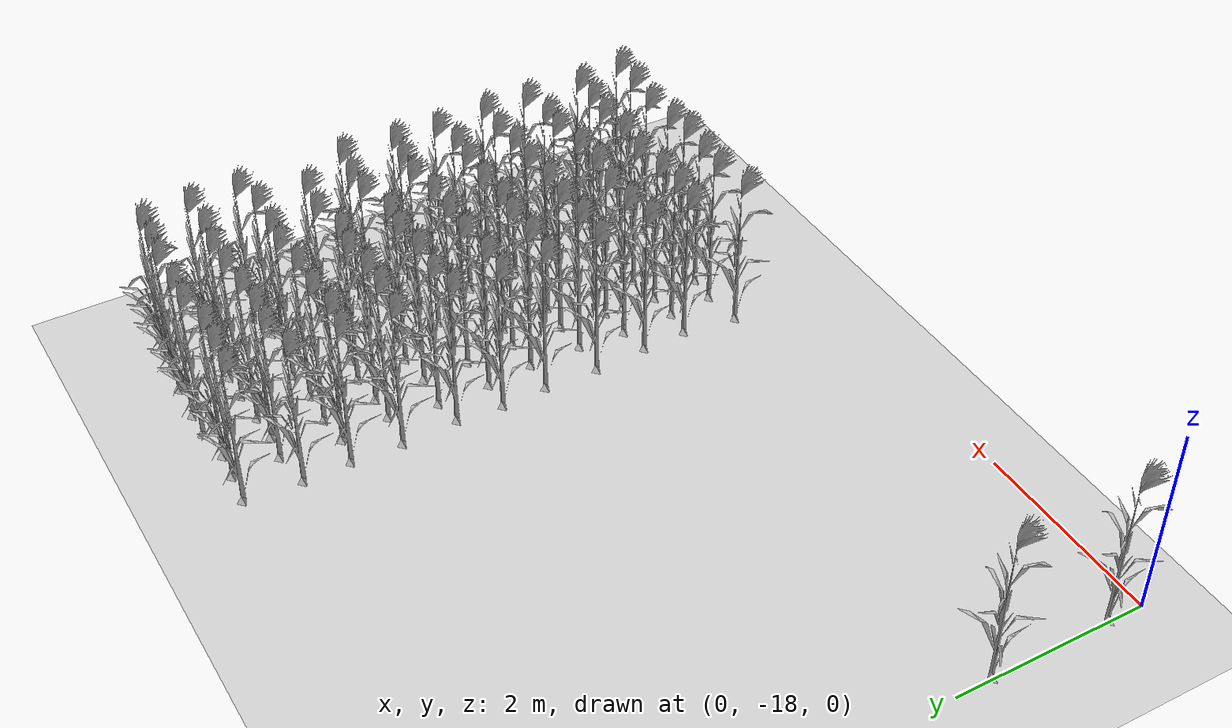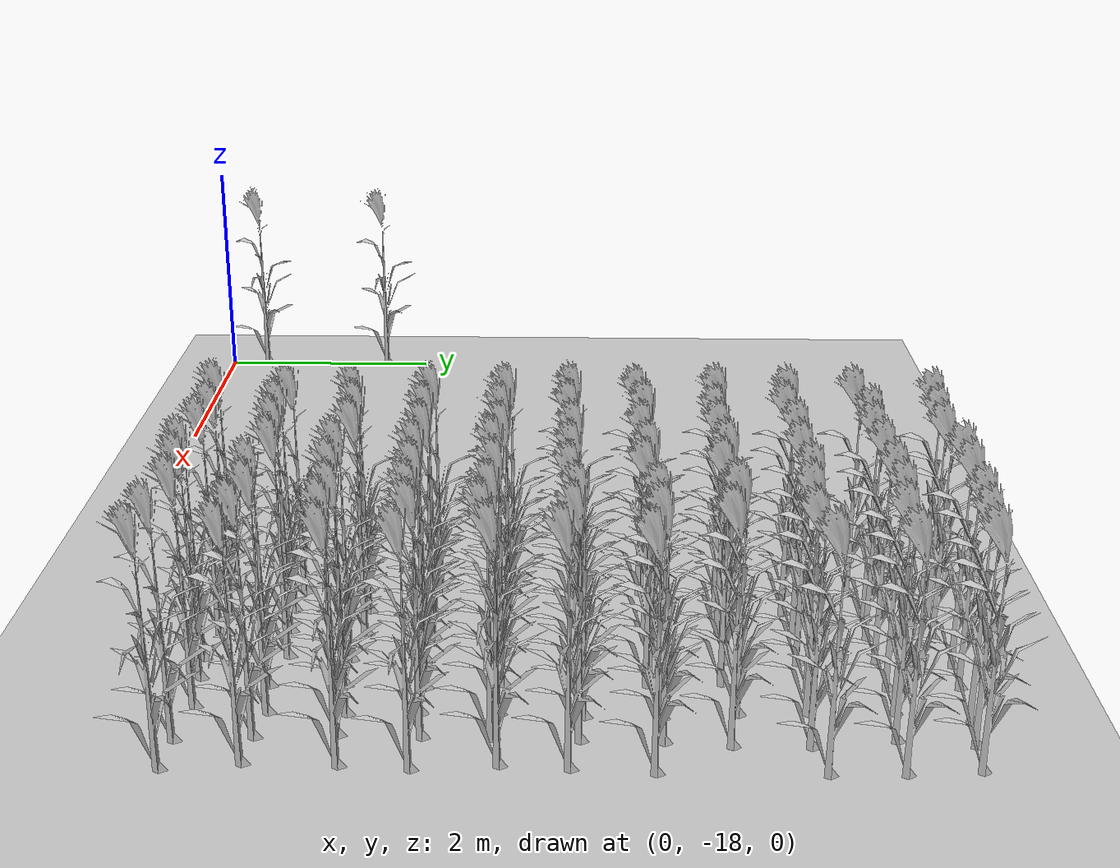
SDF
<sdf version="1.7">
 <world name="farmland_world">
  <model name="ground_plane">
   <static>1</static>
   <link name="link">
    <collision name="collision">
     <geometry><plane><normal>0 0 1</normal><size>40.0 40.0</size></plane></geometry>
     <surface><friction><ode><mu>100</mu><mu2>50</mu2></ode></friction></surface>
    </collision>
    <visual name="visual">
     <cast_shadows>0</cast_shadows>
     <geometry><plane><normal>0 0 1</normal><size>40.0 40.0</size></plane></geometry>
     <material>
      <script><uri>file://media/materials/scripts/gazebo.material</uri><name>Gazebo/Grey</name></script>
     </material>
    </visual>
   </link>
  </model>
  <model name="tree_3_918">
   <static>1</static>
   <link name="link">
    <collision name="collision">
     <geometry><mesh><uri>model://Corn_low_poly/corn.obj</uri><scale>1 1 1</scale></mesh></geometry>
     <surface><friction><ode><mu>100</mu><mu2>50</mu2></ode></friction></surface>
    </collision>
    <visual name="visual">
     <geometry><mesh><uri>model://Corn_low_poly/corn.obj</uri><scale>1 1 1</scale></mesh></geometry>
    </visual>
   </link>
   <pose>5.009285460931384 -11.77307057112158 0 0 0 0</pose>
  </model>
  <model name="tree_3_919">
   <static>1</static>
   <link name="link">
    <collision name="collision">
     <geometry><mesh><uri>model://Corn_low_poly/corn.obj</uri><scale>1 1 1</scale></mesh></geometry>
     <surface><friction><ode><mu>100</mu><mu2>50</mu2></ode></friction></surface>
    </collision>
    <visual name="visual">
     <geometry><mesh><uri>model://Corn_low_poly/corn.obj</uri><scale>1 1 1</scale></mesh></geometry>
    </visual>
   </link>
   <pose>4.968579983121239 -12.343862005149255 0 0 0 0</pose>
  </model>
  <model name="tree_3_920">
   <static>1</static>
   <link name="link">
    <collision name="collision">
     <geometry><mesh><uri>model://Corn_low_poly/corn.obj</uri><scale>1 1 1</scale></mesh></geometry>
     <surface><friction><ode><mu>100</mu><mu2>50</mu2></ode></friction></surface>
    </collision>
    <visual name="visual">
     <geometry><mesh><uri>model://Corn_low_poly/corn.obj</uri><scale>1 1 1</scale></mesh></geometry>
    </visual>
   </link>
   <pose>4.980646904777606 -12.823655536347433 0 0 0 0</pose>
  </model>
  <model name="tree_3_921">
   <static>1</static>
   <link name="link">
    <collision name="collision">
     <geometry><mesh><uri>model://Corn_low_poly/corn.obj</uri><scale>1 1 1</scale></mesh></geometry>
     <surface><friction><ode><mu>100</mu><mu2>50</mu2></ode></friction></surface>
    </collision>
    <visual name="visual">
     <geometry><mesh><uri>model://Corn_low_poly/corn.obj</uri><scale>1 1 1</scale></mesh></geometry>
    </visual>
   </link>
   <pose>4.964461151372059 -13.342723838890858 0 0 0 0</pose>
  </model>
  <model name="tree_3_922">
   <static>1</static>
   <link name="link">
    <collision name="collision">
     <geometry><mesh><uri>model://Corn_low_poly/corn.obj</uri><scale>1 1 1</scale></mesh></geometry>
     <surface><friction><ode><mu>100</mu><mu2>50</mu2></ode></friction></surface>
    </collision>
    <visual name="visual">
     <geometry><mesh><uri>model://Corn_low_poly/corn.obj</uri><scale>1 1 1</scale></mesh></geometry>
    </visual>
   </link>
   <pose>4.999490262744133 -13.92394477992745 0 0 0 0</pose>
  </model>
  <model name="tree_3_923">
   <static>1</static>
   <link name="link">
    <collision name="collision">
     <geometry><mesh><uri>model://Corn_low_poly/corn.obj</uri><scale>1 1 1</scale></mesh></geometry>
     <surface><friction><ode><mu>100</mu><mu2>50</mu2></ode></friction></surface>
    </collision>
    <visual name="visual">
     <geometry><mesh><uri>model://Corn_low_poly/corn.obj</uri><scale>1 1 1</scale></mesh></geometry>
    </visual>
   </link>
   <pose>4.964750974360877 -14.39624685223046 0 0 0 0</pose>
  </model>
  <model name="tree_3_924">
   <static>1</static>
   <link name="link">
    <collision name="collision">
     <geometry><mesh><uri>model://Corn_low_poly/corn.obj</uri><scale>1 1 1</scale></mesh></geometry>
     <surface><friction><ode><mu>100</mu><mu2>50</mu2></ode></friction></surface>
    </collision>
    <visual name="visual">
     <geometry><mesh><uri>model://Corn_low_poly/corn.obj</uri><scale>1 1 1</scale></mesh></geometry>
    </visual>
   </link>
   <pose>4.987510863996455 -14.872094303444827 0 0 0 0</pose>
  </model>
  <model name="tree_3_925">
   <static>1</static>
   <link name="link">
    <collision name="collision">
     <geometry><mesh><uri>model://Corn_low_poly/corn.obj</uri><scale>1 1 1</scale></mesh></geometry>
     <surface><friction><ode><mu>100</mu><mu2>50</mu2></ode></friction></surface>
    </collision>
    <visual name="visual">
     <geometry><mesh><uri>model://Corn_low_poly/corn.obj</uri><scale>1 1 1</scale></mesh></geometry>
    </visual>
   </link>
   <pose>4.972067744864469 -15.428914594177376 0 0 0 0</pose>
  </model>
  <model name="tree_3_926">
   <static>1</static>
   <link name="link">
    <collision name="collision">
     <geometry><mesh><uri>model://Corn_low_poly/corn.obj</uri><scale>1 1 1</scale></mesh></geometry>
     <surface><friction><ode><mu>100</mu><mu2>50</mu2></ode></friction></surface>
    </collision>
    <visual name="visual">
     <geometry><mesh><uri>model://Corn_low_poly/corn.obj</uri><scale>1 1 1</scale></mesh></geometry>
    </visual>
   </link>
   <pose>5.009407192136807 -15.99072091231927 0 0 0 0</pose>
  </model>
  <model name="tree_3_927">
   <static>1</static>
   <link name="link">
    <collision name="collision">
     <geometry><mesh><uri>model://Corn_low_poly/corn.obj</uri><scale>1 1 1</scale></mesh></geometry>
     <surface><friction><ode><mu>100</mu><mu2>50</mu2></ode></friction></surface>
    </collision>
    <visual name="visual">
     <geometry><mesh><uri>model://Corn_low_poly/corn.obj</uri><scale>1 1 1</scale></mesh></geometry>
    </visual>
   </link>
   <pose>5.03006569652018 -16.461015493381908 0 0 0 0</pose>
  </model>
  <model name="tree_3_928">
   <static>1</static>
   <link name="link">
    <collision name="collision">
     <geometry><mesh><uri>model://Corn_low_poly/corn.obj</uri><scale>1 1 1</scale></mesh></geometry>
     <surface><friction><ode><mu>100</mu><mu2>50</mu2></ode></friction></surface>
    </collision>
    <visual name="visual">
     <geometry><mesh><uri>model://Corn_low_poly/corn.obj</uri><scale>1 1 1</scale></mesh></geometry>
    </visual>
   </link>
   <pose>4.953004120405903 -17.01564068858868 0 0 0 0</pose>
  </model>
  <model name="tree_3_944">
   <static>1</static>
   <link name="link">
    <collision name="collision">
     <geometry><mesh><uri>model://Corn_low_poly/corn.obj</uri><scale>1 1 1</scale></mesh></geometry>
     <surface><friction><ode><mu>100</mu><mu2>50</mu2></ode></friction></surface>
    </collision>
    <visual name="visual">
     <geometry><mesh><uri>model://Corn_low_poly/corn.obj</uri><scale>1 1 1</scale></mesh></geometry>
    </visual>
   </link>
   <pose>5.348575217450712 -11.80363389872176 0 0 0 0</pose>
  </model>
  <model name="tree_3_945">
   <static>1</static>
   <link name="link">
    <collision name="collision">
     <geometry><mesh><uri>model://Corn_low_poly/corn.obj</uri><scale>1 1 1</scale></mesh></geometry>
     <surface><friction><ode><mu>100</mu><mu2>50</mu2></ode></friction></surface>
    </collision>
    <visual name="visual">
     <geometry><mesh><uri>model://Corn_low_poly/corn.obj</uri><scale>1 1 1</scale></mesh></geometry>
    </visual>
   </link>
   <pose>5.362328775249468 -12.277117444751282 0 0 0 0</pose>
  </model>
  <model name="tree_3_946">
   <static>1</static>
   <link name="link">
    <collision name="collision">
     <geometry><mesh><uri>model://Corn_low_poly/corn.obj</uri><scale>1 1 1</scale></mesh></geometry>
     <surface><friction><ode><mu>100</mu><mu2>50</mu2></ode></friction></surface>
    </collision>
    <visual name="visual">
     <geometry><mesh><uri>model://Corn_low_poly/corn.obj</uri><scale>1 1 1</scale></mesh></geometry>
    </visual>
   </link>
   <pose>5.290331327973971 -12.873104905814237 0 0 0 0</pose>
  </model>
  <model name="tree_3_947">
   <static>1</static>
   <link name="link">
    <collision name="collision">
     <geometry><mesh><uri>model://Corn_low_poly/corn.obj</uri><scale>1 1 1</scale></mesh></geometry>
     <surface><friction><ode><mu>100</mu><mu2>50</mu2></ode></friction></surface>
    </collision>
    <visual name="visual">
     <geometry><mesh><uri>model://Corn_low_poly/corn.obj</uri><scale>1 1 1</scale></mesh></geometry>
    </visual>
   </link>
   <pose>5.356205019059105 -13.37669106569488 0 0 0 0</pose>
  </model>
  <model name="tree_3_948">
   <static>1</static>
   <link name="link">
    <collision name="collision">
     <geometry><mesh><uri>model://Corn_low_poly/corn.obj</uri><scale>1 1 1</scale></mesh></geometry>
     <surface><friction><ode><mu>100</mu><mu2>50</mu2></ode></friction></surface>
    </collision>
    <visual name="visual">
     <geometry><mesh><uri>model://Corn_low_poly/corn.obj</uri><scale>1 1 1</scale></mesh></geometry>
    </visual>
   </link>
   <pose>5.290315188621686 -13.873961374703706 0 0 0 0</pose>
  </model>
  <model name="tree_3_949">
   <static>1</static>
   <link name="link">
    <collision name="collision">
     <geometry><mesh><uri>model://Corn_low_poly/corn.obj</uri><scale>1 1 1</scale></mesh></geometry>
     <surface><friction><ode><mu>100</mu><mu2>50</mu2></ode></friction></surface>
    </collision>
    <visual name="visual">
     <geometry><mesh><uri>model://Corn_low_poly/corn.obj</uri><scale>1 1 1</scale></mesh></geometry>
    </visual>
   </link>
   <pose>5.291530232433814 -14.412419016385883 0 0 0 0</pose>
  </model>
  <model name="tree_3_950">
   <static>1</static>
   <link name="link">
    <collision name="collision">
     <geometry><mesh><uri>model://Corn_low_poly/corn.obj</uri><scale>1 1 1</scale></mesh></geometry>
     <surface><friction><ode><mu>100</mu><mu2>50</mu2></ode></friction></surface>
    </collision>
    <visual name="visual">
     <geometry><mesh><uri>model://Corn_low_poly/corn.obj</uri><scale>1 1 1</scale></mesh></geometry>
    </visual>
   </link>
   <pose>5.342525019718877 -14.899673756709749 0 0 0 0</pose>
  </model>
  <model name="tree_3_951">
   <static>1</static>
   <link name="link">
    <collision name="collision">
     <geometry><mesh><uri>model://Corn_low_poly/corn.obj</uri><scale>1 1 1</scale></mesh></geometry>
     <surface><friction><ode><mu>100</mu><mu2>50</mu2></ode></friction></surface>
    </collision>
    <visual name="visual">
     <geometry><mesh><uri>model://Corn_low_poly/corn.obj</uri><scale>1 1 1</scale></mesh></geometry>
    </visual>
   </link>
   <pose>5.345085922773824 -15.446604298429977 0 0 0 0</pose>
  </model>
  <model name="tree_3_952">
   <static>1</static>
   <link name="link">
    <collision name="collision">
     <geometry><mesh><uri>model://Corn_low_poly/corn.obj</uri><scale>1 1 1</scale></mesh></geometry>
     <surface><friction><ode><mu>100</mu><mu2>50</mu2></ode></friction></surface>
    </collision>
    <visual name="visual">
     <geometry><mesh><uri>model://Corn_low_poly/corn.obj</uri><scale>1 1 1</scale></mesh></geometry>
    </visual>
   </link>
   <pose>5.318395486968978 -15.938184660198903 0 0 0 0</pose>
  </model>
  <model name="tree_3_953">
   <static>1</static>
   <link name="link">
    <collision name="collision">
     <geometry><mesh><uri>model://Corn_low_poly/corn.obj</uri><scale>1 1 1</scale></mesh></geometry>
     <surface><friction><ode><mu>100</mu><mu2>50</mu2></ode></friction></surface>
    </collision>
    <visual name="visual">
     <geometry><mesh><uri>model://Corn_low_poly/corn.obj</uri><scale>1 1 1</scale></mesh></geometry>
    </visual>
   </link>
   <pose>5.319620040711819 -16.494697534856236 0 0 0 0</pose>
  </model>
  <model name="tree_3_954">
   <static>1</static>
   <link name="link">
    <collision name="collision">
     <geometry><mesh><uri>model://Corn_low_poly/corn.obj</uri><scale>1 1 1</scale></mesh></geometry>
     <surface><friction><ode><mu>100</mu><mu2>50</mu2></ode></friction></surface>
    </collision>
    <visual name="visual">
     <geometry><mesh><uri>model://Corn_low_poly/corn.obj</uri><scale>1 1 1</scale></mesh></geometry>
    </visual>
   </link>
   <pose>5.365774962519192 -16.965393106145473 0 0 0 0</pose>
  </model>
  <model name="tree_3_970">
   <static>1</static>
   <link name="link">
    <collision name="collision">
     <geometry><mesh><uri>model://Corn_low_poly/corn.obj</uri><scale>1 1 1</scale></mesh></geometry>
     <surface><friction><ode><mu>100</mu><mu2>50</mu2></ode></friction></surface>
    </collision>
    <visual name="visual">
     <geometry><mesh><uri>model://Corn_low_poly/corn.obj</uri><scale>1 1 1</scale></mesh></geometry>
    </visual>
   </link>
   <pose>5.643738301724598 -11.826842044804991 0 0 0 0</pose>
  </model>
  <model name="tree_3_971">
   <static>1</static>
   <link name="link">
    <collision name="collision">
     <geometry><mesh><uri>model://Corn_low_poly/corn.obj</uri><scale>1 1 1</scale></mesh></geometry>
     <surface><friction><ode><mu>100</mu><mu2>50</mu2></ode></friction></surface>
    </collision>
    <visual name="visual">
     <geometry><mesh><uri>model://Corn_low_poly/corn.obj</uri><scale>1 1 1</scale></mesh></geometry>
    </visual>
   </link>
   <pose>5.65132784521595 -12.309379795497552 0 0 0 0</pose>
  </model>
  <model name="tree_3_972">
   <static>1</static>
   <link name="link">
    <collision name="collision">
     <geometry><mesh><uri>model://Corn_low_poly/corn.obj</uri><scale>1 1 1</scale></mesh></geometry>
     <surface><friction><ode><mu>100</mu><mu2>50</mu2></ode></friction></surface>
    </collision>
    <visual name="visual">
     <geometry><mesh><uri>model://Corn_low_poly/corn.obj</uri><scale>1 1 1</scale></mesh></geometry>
    </visual>
   </link>
   <pose>5.621968991995892 -12.833082251984537 0 0 0 0</pose>
  </model>
  <model name="tree_3_973">
   <static>1</static>
   <link name="link">
    <collision name="collision">
     <geometry><mesh><uri>model://Corn_low_poly/corn.obj</uri><scale>1 1 1</scale></mesh></geometry>
     <surface><friction><ode><mu>100</mu><mu2>50</mu2></ode></friction></surface>
    </collision>
    <visual name="visual">
     <geometry><mesh><uri>model://Corn_low_poly/corn.obj</uri><scale>1 1 1</scale></mesh></geometry>
    </visual>
   </link>
   <pose>5.646144584623509 -13.378534218227315 0 0 0 0</pose>
  </model>
  <model name="tree_3_974">
   <static>1</static>
   <link name="link">
    <collision name="collision">
     <geometry><mesh><uri>model://Corn_low_poly/corn.obj</uri><scale>1 1 1</scale></mesh></geometry>
     <surface><friction><ode><mu>100</mu><mu2>50</mu2></ode></friction></surface>
    </collision>
    <visual name="visual">
     <geometry><mesh><uri>model://Corn_low_poly/corn.obj</uri><scale>1 1 1</scale></mesh></geometry>
    </visual>
   </link>
   <pose>5.676857338443339 -13.906513512244633 0 0 0 0</pose>
  </model>
  <model name="tree_3_975">
   <static>1</static>
   <link name="link">
    <collision name="collision">
     <geometry><mesh><uri>model://Corn_low_poly/corn.obj</uri><scale>1 1 1</scale></mesh></geometry>
     <surface><friction><ode><mu>100</mu><mu2>50</mu2></ode></friction></surface>
    </collision>
    <visual name="visual">
     <geometry><mesh><uri>model://Corn_low_poly/corn.obj</uri><scale>1 1 1</scale></mesh></geometry>
    </visual>
   </link>
   <pose>5.684213927434844 -14.38305748623788 0 0 0 0</pose>
  </model>
  <model name="tree_3_976">
   <static>1</static>
   <link name="link">
    <collision name="collision">
     <geometry><mesh><uri>model://Corn_low_poly/corn.obj</uri><scale>1 1 1</scale></mesh></geometry>
     <surface><friction><ode><mu>100</mu><mu2>50</mu2></ode></friction></surface>
    </collision>
    <visual name="visual">
     <geometry><mesh><uri>model://Corn_low_poly/corn.obj</uri><scale>1 1 1</scale></mesh></geometry>
    </visual>
   </link>
   <pose>5.696900438651314 -14.886449360166997 0 0 0 0</pose>
  </model>
  <model name="tree_3_977">
   <static>1</static>
   <link name="link">
    <collision name="collision">
     <geometry><mesh><uri>model://Corn_low_poly/corn.obj</uri><scale>1 1 1</scale></mesh></geometry>
     <surface><friction><ode><mu>100</mu><mu2>50</mu2></ode></friction></surface>
    </collision>
    <visual name="visual">
     <geometry><mesh><uri>model://Corn_low_poly/corn.obj</uri><scale>1 1 1</scale></mesh></geometry>
    </visual>
   </link>
   <pose>5.698188555663537 -15.430263962861801 0 0 0 0</pose>
  </model>
  <model name="tree_3_978">
   <static>1</static>
   <link name="link">
    <collision name="collision">
     <geometry><mesh><uri>model://Corn_low_poly/corn.obj</uri><scale>1 1 1</scale></mesh></geometry>
     <surface><friction><ode><mu>100</mu><mu2>50</mu2></ode></friction></surface>
    </collision>
    <visual name="visual">
     <geometry><mesh><uri>model://Corn_low_poly/corn.obj</uri><scale>1 1 1</scale></mesh></geometry>
    </visual>
   </link>
   <pose>5.657242758835486 -15.925388601394822 0 0 0 0</pose>
  </model>
  <model name="tree_3_979">
   <static>1</static>
   <link name="link">
    <collision name="collision">
     <geometry><mesh><uri>model://Corn_low_poly/corn.obj</uri><scale>1 1 1</scale></mesh></geometry>
     <surface><friction><ode><mu>100</mu><mu2>50</mu2></ode></friction></surface>
    </collision>
    <visual name="visual">
     <geometry><mesh><uri>model://Corn_low_poly/corn.obj</uri><scale>1 1 1</scale></mesh></geometry>
    </visual>
   </link>
   <pose>5.624329413028167 -16.478217350936607 0 0 0 0</pose>
  </model>
  <model name="tree_3_980">
   <static>1</static>
   <link name="link">
    <collision name="collision">
     <geometry><mesh><uri>model://Corn_low_poly/corn.obj</uri><scale>1 1 1</scale></mesh></geometry>
     <surface><friction><ode><mu>100</mu><mu2>50</mu2></ode></friction></surface>
    </collision>
    <visual name="visual">
     <geometry><mesh><uri>model://Corn_low_poly/corn.obj</uri><scale>1 1 1</scale></mesh></geometry>
    </visual>
   </link>
   <pose>5.664889785182695 -16.987364709002172 0 0 0 0</pose>
  </model>
  <model name="tree_3_996">
   <static>1</static>
   <link name="link">
    <collision name="collision">
     <geometry><mesh><uri>model://Corn_low_poly/corn.obj</uri><scale>1 1 1</scale></mesh></geometry>
     <surface><friction><ode><mu>100</mu><mu2>50</mu2></ode></friction></surface>
    </collision>
    <visual name="visual">
     <geometry><mesh><uri>model://Corn_low_poly/corn.obj</uri><scale>1 1 1</scale></mesh></geometry>
    </visual>
   </link>
   <pose>6.010000944361969 -11.768080515785183 0 0 0 0</pose>
  </model>
  <model name="tree_3_997">
   <static>1</static>
   <link name="link">
    <collision name="collision">
     <geometry><mesh><uri>model://Corn_low_poly/corn.obj</uri><scale>1 1 1</scale></mesh></geometry>
     <surface><friction><ode><mu>100</mu><mu2>50</mu2></ode></friction></surface>
    </collision>
    <visual name="visual">
     <geometry><mesh><uri>model://Corn_low_poly/corn.obj</uri><scale>1 1 1</scale></mesh></geometry>
    </visual>
   </link>
   <pose>5.9594642880489195 -12.294316055423742 0 0 0 0</pose>
  </model>
  <model name="tree_3_998">
   <static>1</static>
   <link name="link">
    <collision name="collision">
     <geometry><mesh><uri>model://Corn_low_poly/corn.obj</uri><scale>1 1 1</scale></mesh></geometry>
     <surface><friction><ode><mu>100</mu><mu2>50</mu2></ode></friction></surface>
    </collision>
    <visual name="visual">
     <geometry><mesh><uri>model://Corn_low_poly/corn.obj</uri><scale>1 1 1</scale></mesh></geometry>
    </visual>
   </link>
   <pose>5.999626994022164 -12.852070242986628 0 0 0 0</pose>
  </model>
  <model name="tree_3_999">
   <static>1</static>
   <link name="link">
    <collision name="collision">
     <geometry><mesh><uri>model://Corn_low_poly/corn.obj</uri><scale>1 1 1</scale></mesh></geometry>
     <surface><friction><ode><mu>100</mu><mu2>50</mu2></ode></friction></surface>
    </collision>
    <visual name="visual">
     <geometry><mesh><uri>model://Corn_low_poly/corn.obj</uri><scale>1 1 1</scale></mesh></geometry>
    </visual>
   </link>
   <pose>5.986841721520683 -13.345812589706222 0 0 0 0</pose>
  </model>
  <model name="tree_3_1000">
   <static>1</static>
   <link name="link">
    <collision name="collision">
     <geometry><mesh><uri>model://Corn_low_poly/corn.obj</uri><scale>1 1 1</scale></mesh></geometry>
     <surface><friction><ode><mu>100</mu><mu2>50</mu2></ode></friction></surface>
    </collision>
    <visual name="visual">
     <geometry><mesh><uri>model://Corn_low_poly/corn.obj</uri><scale>1 1 1</scale></mesh></geometry>
    </visual>
   </link>
   <pose>6.027190775963268 -13.873802940191817 0 0 0 0</pose>
  </model>
  <model name="tree_3_1001">
   <static>1</static>
   <link name="link">
    <collision name="collision">
     <geometry><mesh><uri>model://Corn_low_poly/corn.obj</uri><scale>1 1 1</scale></mesh></geometry>
     <surface><friction><ode><mu>100</mu><mu2>50</mu2></ode></friction></surface>
    </collision>
    <visual name="visual">
     <geometry><mesh><uri>model://Corn_low_poly/corn.obj</uri><scale>1 1 1</scale></mesh></geometry>
    </visual>
   </link>
   <pose>6.037224835617838 -14.396561375580124 0 0 0 0</pose>
  </model>
  <model name="tree_3_1002">
   <static>1</static>
   <link name="link">
    <collision name="collision">
     <geometry><mesh><uri>model://Corn_low_poly/corn.obj</uri><scale>1 1 1</scale></mesh></geometry>
     <surface><friction><ode><mu>100</mu><mu2>50</mu2></ode></friction></surface>
    </collision>
    <visual name="visual">
     <geometry><mesh><uri>model://Corn_low_poly/corn.obj</uri><scale>1 1 1</scale></mesh></geometry>
    </visual>
   </link>
   <pose>5.963379887336941 -14.927668922950952 0 0 0 0</pose>
  </model>
  <model name="tree_3_1003">
   <static>1</static>
   <link name="link">
    <collision name="collision">
     <geometry><mesh><uri>model://Corn_low_poly/corn.obj</uri><scale>1 1 1</scale></mesh></geometry>
     <surface><friction><ode><mu>100</mu><mu2>50</mu2></ode></friction></surface>
    </collision>
    <visual name="visual">
     <geometry><mesh><uri>model://Corn_low_poly/corn.obj</uri><scale>1 1 1</scale></mesh></geometry>
    </visual>
   </link>
   <pose>6.0264495066867925 -15.45676412199878 0 0 0 0</pose>
  </model>
  <model name="tree_3_1004">
   <static>1</static>
   <link name="link">
    <collision name="collision">
     <geometry><mesh><uri>model://Corn_low_poly/corn.obj</uri><scale>1 1 1</scale></mesh></geometry>
     <surface><friction><ode><mu>100</mu><mu2>50</mu2></ode></friction></surface>
    </collision>
    <visual name="visual">
     <geometry><mesh><uri>model://Corn_low_poly/corn.obj</uri><scale>1 1 1</scale></mesh></geometry>
    </visual>
   </link>
   <pose>6.015988950970454 -15.98950591681886 0 0 0 0</pose>
  </model>
  <model name="tree_3_1005">
   <static>1</static>
   <link name="link">
    <collision name="collision">
     <geometry><mesh><uri>model://Corn_low_poly/corn.obj</uri><scale>1 1 1</scale></mesh></geometry>
     <surface><friction><ode><mu>100</mu><mu2>50</mu2></ode></friction></surface>
    </collision>
    <visual name="visual">
     <geometry><mesh><uri>model://Corn_low_poly/corn.obj</uri><scale>1 1 1</scale></mesh></geometry>
    </visual>
   </link>
   <pose>5.9779850778017645 -16.436555948014348 0 0 0 0</pose>
  </model>
  <model name="tree_3_1006">
   <static>1</static>
   <link name="link">
    <collision name="collision">
     <geometry><mesh><uri>model://Corn_low_poly/corn.obj</uri><scale>1 1 1</scale></mesh></geometry>
     <surface><friction><ode><mu>100</mu><mu2>50</mu2></ode></friction></surface>
    </collision>
    <visual name="visual">
     <geometry><mesh><uri>model://Corn_low_poly/corn.obj</uri><scale>1 1 1</scale></mesh></geometry>
    </visual>
   </link>
   <pose>6.022751704742836 -17.030895075272408 0 0 0 0</pose>
  </model>
  <model name="tree_3_1022">
   <static>1</static>
   <link name="link">
    <collision name="collision">
     <geometry><mesh><uri>model://Corn_low_poly/corn.obj</uri><scale>1 1 1</scale></mesh></geometry>
     <surface><friction><ode><mu>100</mu><mu2>50</mu2></ode></friction></surface>
    </collision>
    <visual name="visual">
     <geometry><mesh><uri>model://Corn_low_poly/corn.obj</uri><scale>1 1 1</scale></mesh></geometry>
    </visual>
   </link>
   <pose>6.299604586519288 -11.779514034616856 0 0 0 0</pose>
  </model>
  <model name="tree_3_1023">
   <static>1</static>
   <link name="link">
    <collision name="collision">
     <geometry><mesh><uri>model://Corn_low_poly/corn.obj</uri><scale>1 1 1</scale></mesh></geometry>
     <surface><friction><ode><mu>100</mu><mu2>50</mu2></ode></friction></surface>
    </collision>
    <visual name="visual">
     <geometry><mesh><uri>model://Corn_low_poly/corn.obj</uri><scale>1 1 1</scale></mesh></geometry>
    </visual>
   </link>
   <pose>6.3227147897314895 -12.28047811198991 0 0 0 0</pose>
  </model>
  <model name="tree_3_1024">
   <static>1</static>
   <link name="link">
    <collision name="collision">
     <geometry><mesh><uri>model://Corn_low_poly/corn.obj</uri><scale>1 1 1</scale></mesh></geometry>
     <surface><friction><ode><mu>100</mu><mu2>50</mu2></ode></friction></surface>
    </collision>
    <visual name="visual">
     <geometry><mesh><uri>model://Corn_low_poly/corn.obj</uri><scale>1 1 1</scale></mesh></geometry>
    </visual>
   </link>
   <pose>6.352792282931691 -12.824011602579395 0 0 0 0</pose>
  </model>
  <model name="tree_3_1025">
   <static>1</static>
   <link name="link">
    <collision name="collision">
     <geometry><mesh><uri>model://Corn_low_poly/corn.obj</uri><scale>1 1 1</scale></mesh></geometry>
     <surface><friction><ode><mu>100</mu><mu2>50</mu2></ode></friction></surface>
    </collision>
    <visual name="visual">
     <geometry><mesh><uri>model://Corn_low_poly/corn.obj</uri><scale>1 1 1</scale></mesh></geometry>
    </visual>
   </link>
   <pose>6.281336394212889 -13.402794806495956 0 0 0 0</pose>
  </model>
  <model name="tree_3_1026">
   <static>1</static>
   <link name="link">
    <collision name="collision">
     <geometry><mesh><uri>model://Corn_low_poly/corn.obj</uri><scale>1 1 1</scale></mesh></geometry>
     <surface><friction><ode><mu>100</mu><mu2>50</mu2></ode></friction></surface>
    </collision>
    <visual name="visual">
     <geometry><mesh><uri>model://Corn_low_poly/corn.obj</uri><scale>1 1 1</scale></mesh></geometry>
    </visual>
   </link>
   <pose>6.3142095593875105 -13.91556085310789 0 0 0 0</pose>
  </model>
  <model name="tree_3_1027">
   <static>1</static>
   <link name="link">
    <collision name="collision">
     <geometry><mesh><uri>model://Corn_low_poly/corn.obj</uri><scale>1 1 1</scale></mesh></geometry>
     <surface><friction><ode><mu>100</mu><mu2>50</mu2></ode></friction></surface>
    </collision>
    <visual name="visual">
     <geometry><mesh><uri>model://Corn_low_poly/corn.obj</uri><scale>1 1 1</scale></mesh></geometry>
    </visual>
   </link>
   <pose>6.37866593358923 -14.402795560827906 0 0 0 0</pose>
  </model>
  <model name="tree_3_1028">
   <static>1</static>
   <link name="link">
    <collision name="collision">
     <geometry><mesh><uri>model://Corn_low_poly/corn.obj</uri><scale>1 1 1</scale></mesh></geometry>
     <surface><friction><ode><mu>100</mu><mu2>50</mu2></ode></friction></surface>
    </collision>
    <visual name="visual">
     <geometry><mesh><uri>model://Corn_low_poly/corn.obj</uri><scale>1 1 1</scale></mesh></geometry>
    </visual>
   </link>
   <pose>6.322448900081387 -14.903331363158426 0 0 0 0</pose>
  </model>
  <model name="tree_3_1029">
   <static>1</static>
   <link name="link">
    <collision name="collision">
     <geometry><mesh><uri>model://Corn_low_poly/corn.obj</uri><scale>1 1 1</scale></mesh></geometry>
     <surface><friction><ode><mu>100</mu><mu2>50</mu2></ode></friction></surface>
    </collision>
    <visual name="visual">
     <geometry><mesh><uri>model://Corn_low_poly/corn.obj</uri><scale>1 1 1</scale></mesh></geometry>
    </visual>
   </link>
   <pose>6.373106469965646 -15.434298084806427 0 0 0 0</pose>
  </model>
  <model name="tree_3_1030">
   <static>1</static>
   <link name="link">
    <collision name="collision">
     <geometry><mesh><uri>model://Corn_low_poly/corn.obj</uri><scale>1 1 1</scale></mesh></geometry>
     <surface><friction><ode><mu>100</mu><mu2>50</mu2></ode></friction></surface>
    </collision>
    <visual name="visual">
     <geometry><mesh><uri>model://Corn_low_poly/corn.obj</uri><scale>1 1 1</scale></mesh></geometry>
    </visual>
   </link>
   <pose>6.357396178697096 -15.985293449580587 0 0 0 0</pose>
  </model>
  <model name="tree_3_1031">
   <static>1</static>
   <link name="link">
    <collision name="collision">
     <geometry><mesh><uri>model://Corn_low_poly/corn.obj</uri><scale>1 1 1</scale></mesh></geometry>
     <surface><friction><ode><mu>100</mu><mu2>50</mu2></ode></friction></surface>
    </collision>
    <visual name="visual">
     <geometry><mesh><uri>model://Corn_low_poly/corn.obj</uri><scale>1 1 1</scale></mesh></geometry>
    </visual>
   </link>
   <pose>6.3706744928511325 -16.506425737886616 0 0 0 0</pose>
  </model>
  <model name="tree_3_1032">
   <static>1</static>
   <link name="link">
    <collision name="collision">
     <geometry><mesh><uri>model://Corn_low_poly/corn.obj</uri><scale>1 1 1</scale></mesh></geometry>
     <surface><friction><ode><mu>100</mu><mu2>50</mu2></ode></friction></surface>
    </collision>
    <visual name="visual">
     <geometry><mesh><uri>model://Corn_low_poly/corn.obj</uri><scale>1 1 1</scale></mesh></geometry>
    </visual>
   </link>
   <pose>6.281603250387025 -16.999278917775687 0 0 0 0</pose>
  </model>
  <model name="tree_3_1048">
   <static>1</static>
   <link name="link">
    <collision name="collision">
     <geometry><mesh><uri>model://Corn_low_poly/corn.obj</uri><scale>1 1 1</scale></mesh></geometry>
     <surface><friction><ode><mu>100</mu><mu2>50</mu2></ode></friction></surface>
    </collision>
    <visual name="visual">
     <geometry><mesh><uri>model://Corn_low_poly/corn.obj</uri><scale>1 1 1</scale></mesh></geometry>
    </visual>
   </link>
   <pose>6.714221695410811 -11.794547541469107 0 0 0 0</pose>
  </model>
  <model name="tree_3_1049">
   <static>1</static>
   <link name="link">
    <collision name="collision">
     <geometry><mesh><uri>model://Corn_low_poly/corn.obj</uri><scale>1 1 1</scale></mesh></geometry>
     <surface><friction><ode><mu>100</mu><mu2>50</mu2></ode></friction></surface>
    </collision>
    <visual name="visual">
     <geometry><mesh><uri>model://Corn_low_poly/corn.obj</uri><scale>1 1 1</scale></mesh></geometry>
    </visual>
   </link>
   <pose>6.630842287147765 -12.280041685866019 0 0 0 0</pose>
  </model>
  <model name="tree_3_1050">
   <static>1</static>
   <link name="link">
    <collision name="collision">
     <geometry><mesh><uri>model://Corn_low_poly/corn.obj</uri><scale>1 1 1</scale></mesh></geometry>
     <surface><friction><ode><mu>100</mu><mu2>50</mu2></ode></friction></surface>
    </collision>
    <visual name="visual">
     <geometry><mesh><uri>model://Corn_low_poly/corn.obj</uri><scale>1 1 1</scale></mesh></geometry>
    </visual>
   </link>
   <pose>6.641891086752151 -12.862728099755145 0 0 0 0</pose>
  </model>
  <model name="tree_3_1051">
   <static>1</static>
   <link name="link">
    <collision name="collision">
     <geometry><mesh><uri>model://Corn_low_poly/corn.obj</uri><scale>1 1 1</scale></mesh></geometry>
     <surface><friction><ode><mu>100</mu><mu2>50</mu2></ode></friction></surface>
    </collision>
    <visual name="visual">
     <geometry><mesh><uri>model://Corn_low_poly/corn.obj</uri><scale>1 1 1</scale></mesh></geometry>
    </visual>
   </link>
   <pose>6.663411977042564 -13.327027683416924 0 0 0 0</pose>
  </model>
  <model name="tree_3_1052">
   <static>1</static>
   <link name="link">
    <collision name="collision">
     <geometry><mesh><uri>model://Corn_low_poly/corn.obj</uri><scale>1 1 1</scale></mesh></geometry>
     <surface><friction><ode><mu>100</mu><mu2>50</mu2></ode></friction></surface>
    </collision>
    <visual name="visual">
     <geometry><mesh><uri>model://Corn_low_poly/corn.obj</uri><scale>1 1 1</scale></mesh></geometry>
    </visual>
   </link>
   <pose>6.7163438922980685 -13.834097792868548 0 0 0 0</pose>
  </model>
  <model name="tree_3_1053">
   <static>1</static>
   <link name="link">
    <collision name="collision">
     <geometry><mesh><uri>model://Corn_low_poly/corn.obj</uri><scale>1 1 1</scale></mesh></geometry>
     <surface><friction><ode><mu>100</mu><mu2>50</mu2></ode></friction></surface>
    </collision>
    <visual name="visual">
     <geometry><mesh><uri>model://Corn_low_poly/corn.obj</uri><scale>1 1 1</scale></mesh></geometry>
    </visual>
   </link>
   <pose>6.71477042203451 -14.35014556245046 0 0 0 0</pose>
  </model>
  <model name="tree_3_1054">
   <static>1</static>
   <link name="link">
    <collision name="collision">
     <geometry><mesh><uri>model://Corn_low_poly/corn.obj</uri><scale>1 1 1</scale></mesh></geometry>
     <surface><friction><ode><mu>100</mu><mu2>50</mu2></ode></friction></surface>
    </collision>
    <visual name="visual">
     <geometry><mesh><uri>model://Corn_low_poly/corn.obj</uri><scale>1 1 1</scale></mesh></geometry>
    </visual>
   </link>
   <pose>6.68856423997489 -14.919888306278017 0 0 0 0</pose>
  </model>
  <model name="tree_3_1055">
   <static>1</static>
   <link name="link">
    <collision name="collision">
     <geometry><mesh><uri>model://Corn_low_poly/corn.obj</uri><scale>1 1 1</scale></mesh></geometry>
     <surface><friction><ode><mu>100</mu><mu2>50</mu2></ode></friction></surface>
    </collision>
    <visual name="visual">
     <geometry><mesh><uri>model://Corn_low_poly/corn.obj</uri><scale>1 1 1</scale></mesh></geometry>
    </visual>
   </link>
   <pose>6.692313266600801 -15.441157777588275 0 0 0 0</pose>
  </model>
  <model name="tree_3_1056">
   <static>1</static>
   <link name="link">
    <collision name="collision">
     <geometry><mesh><uri>model://Corn_low_poly/corn.obj</uri><scale>1 1 1</scale></mesh></geometry>
     <surface><friction><ode><mu>100</mu><mu2>50</mu2></ode></friction></surface>
    </collision>
    <visual name="visual">
     <geometry><mesh><uri>model://Corn_low_poly/corn.obj</uri><scale>1 1 1</scale></mesh></geometry>
    </visual>
   </link>
   <pose>6.713819470404555 -15.93196145399584 0 0 0 0</pose>
  </model>
  <model name="tree_3_1057">
   <static>1</static>
   <link name="link">
    <collision name="collision">
     <geometry><mesh><uri>model://Corn_low_poly/corn.obj</uri><scale>1 1 1</scale></mesh></geometry>
     <surface><friction><ode><mu>100</mu><mu2>50</mu2></ode></friction></surface>
    </collision>
    <visual name="visual">
     <geometry><mesh><uri>model://Corn_low_poly/corn.obj</uri><scale>1 1 1</scale></mesh></geometry>
    </visual>
   </link>
   <pose>6.7053187484750145 -16.45952222302887 0 0 0 0</pose>
  </model>
  <model name="tree_3_1058">
   <static>1</static>
   <link name="link">
    <collision name="collision">
     <geometry><mesh><uri>model://Corn_low_poly/corn.obj</uri><scale>1 1 1</scale></mesh></geometry>
     <surface><friction><ode><mu>100</mu><mu2>50</mu2></ode></friction></surface>
    </collision>
    <visual name="visual">
     <geometry><mesh><uri>model://Corn_low_poly/corn.obj</uri><scale>1 1 1</scale></mesh></geometry>
    </visual>
   </link>
   <pose>6.641595375139819 -16.963966516697987 0 0 0 0</pose>
  </model>
  <model name="tree_3_1074">
   <static>1</static>
   <link name="link">
    <collision name="collision">
     <geometry><mesh><uri>model://Corn_low_poly/corn.obj</uri><scale>1 1 1</scale></mesh></geometry>
     <surface><friction><ode><mu>100</mu><mu2>50</mu2></ode></friction></surface>
    </collision>
    <visual name="visual">
     <geometry><mesh><uri>model://Corn_low_poly/corn.obj</uri><scale>1 1 1</scale></mesh></geometry>
    </visual>
   </link>
   <pose>7.000963044334856 -11.824544146350272 0 0 0 0</pose>
  </model>
  <model name="tree_3_1075">
   <static>1</static>
   <link name="link">
    <collision name="collision">
     <geometry><mesh><uri>model://Corn_low_poly/corn.obj</uri><scale>1 1 1</scale></mesh></geometry>
     <surface><friction><ode><mu>100</mu><mu2>50</mu2></ode></friction></surface>
    </collision>
    <visual name="visual">
     <geometry><mesh><uri>model://Corn_low_poly/corn.obj</uri><scale>1 1 1</scale></mesh></geometry>
    </visual>
   </link>
   <pose>6.954007830684831 -12.326854028313825 0 0 0 0</pose>
  </model>
  <model name="tree_3_1076">
   <static>1</static>
   <link name="link">
    <collision name="collision">
     <geometry><mesh><uri>model://Corn_low_poly/corn.obj</uri><scale>1 1 1</scale></mesh></geometry>
     <surface><friction><ode><mu>100</mu><mu2>50</mu2></ode></friction></surface>
    </collision>
    <visual name="visual">
     <geometry><mesh><uri>model://Corn_low_poly/corn.obj</uri><scale>1 1 1</scale></mesh></geometry>
    </visual>
   </link>
   <pose>7.037695741542561 -12.887971611784868 0 0 0 0</pose>
  </model>
  <model name="tree_3_1077">
   <static>1</static>
   <link name="link">
    <collision name="collision">
     <geometry><mesh><uri>model://Corn_low_poly/corn.obj</uri><scale>1 1 1</scale></mesh></geometry>
     <surface><friction><ode><mu>100</mu><mu2>50</mu2></ode></friction></surface>
    </collision>
    <visual name="visual">
     <geometry><mesh><uri>model://Corn_low_poly/corn.obj</uri><scale>1 1 1</scale></mesh></geometry>
    </visual>
   </link>
   <pose>7.039277516224481 -13.396870780116162 0 0 0 0</pose>
  </model>
  <model name="tree_3_1078">
   <static>1</static>
   <link name="link">
    <collision name="collision">
     <geometry><mesh><uri>model://Corn_low_poly/corn.obj</uri><scale>1 1 1</scale></mesh></geometry>
     <surface><friction><ode><mu>100</mu><mu2>50</mu2></ode></friction></surface>
    </collision>
    <visual name="visual">
     <geometry><mesh><uri>model://Corn_low_poly/corn.obj</uri><scale>1 1 1</scale></mesh></geometry>
    </visual>
   </link>
   <pose>7.004055848685213 -13.833878018863267 0 0 0 0</pose>
  </model>
  <model name="tree_3_1079">
   <static>1</static>
   <link name="link">
    <collision name="collision">
     <geometry><mesh><uri>model://Corn_low_poly/corn.obj</uri><scale>1 1 1</scale></mesh></geometry>
     <surface><friction><ode><mu>100</mu><mu2>50</mu2></ode></friction></surface>
    </collision>
    <visual name="visual">
     <geometry><mesh><uri>model://Corn_low_poly/corn.obj</uri><scale>1 1 1</scale></mesh></geometry>
    </visual>
   </link>
   <pose>6.995781502905245 -14.377278792513327 0 0 0 0</pose>
  </model>
  <model name="tree_3_1080">
   <static>1</static>
   <link name="link">
    <collision name="collision">
     <geometry><mesh><uri>model://Corn_low_poly/corn.obj</uri><scale>1 1 1</scale></mesh></geometry>
     <surface><friction><ode><mu>100</mu><mu2>50</mu2></ode></friction></surface>
    </collision>
    <visual name="visual">
     <geometry><mesh><uri>model://Corn_low_poly/corn.obj</uri><scale>1 1 1</scale></mesh></geometry>
    </visual>
   </link>
   <pose>6.981903128970655 -14.950325928315898 0 0 0 0</pose>
  </model>
  <model name="tree_3_1081">
   <static>1</static>
   <link name="link">
    <collision name="collision">
     <geometry><mesh><uri>model://Corn_low_poly/corn.obj</uri><scale>1 1 1</scale></mesh></geometry>
     <surface><friction><ode><mu>100</mu><mu2>50</mu2></ode></friction></surface>
    </collision>
    <visual name="visual">
     <geometry><mesh><uri>model://Corn_low_poly/corn.obj</uri><scale>1 1 1</scale></mesh></geometry>
    </visual>
   </link>
   <pose>6.979134428827545 -15.408471997881483 0 0 0 0</pose>
  </model>
  <model name="tree_3_1082">
   <static>1</static>
   <link name="link">
    <collision name="collision">
     <geometry><mesh><uri>model://Corn_low_poly/corn.obj</uri><scale>1 1 1</scale></mesh></geometry>
     <surface><friction><ode><mu>100</mu><mu2>50</mu2></ode></friction></surface>
    </collision>
    <visual name="visual">
     <geometry><mesh><uri>model://Corn_low_poly/corn.obj</uri><scale>1 1 1</scale></mesh></geometry>
    </visual>
   </link>
   <pose>6.9631655181617305 -15.95517984558196 0 0 0 0</pose>
  </model>
  <model name="tree_3_1083">
   <static>1</static>
   <link name="link">
    <collision name="collision">
     <geometry><mesh><uri>model://Corn_low_poly/corn.obj</uri><scale>1 1 1</scale></mesh></geometry>
     <surface><friction><ode><mu>100</mu><mu2>50</mu2></ode></friction></surface>
    </collision>
    <visual name="visual">
     <geometry><mesh><uri>model://Corn_low_poly/corn.obj</uri><scale>1 1 1</scale></mesh></geometry>
    </visual>
   </link>
   <pose>6.999034924275364 -16.500022850056702 0 0 0 0</pose>
  </model>
  <model name="tree_3_1084">
   <static>1</static>
   <link name="link">
    <collision name="collision">
     <geometry><mesh><uri>model://Corn_low_poly/corn.obj</uri><scale>1 1 1</scale></mesh></geometry>
     <surface><friction><ode><mu>100</mu><mu2>50</mu2></ode></friction></surface>
    </collision>
    <visual name="visual">
     <geometry><mesh><uri>model://Corn_low_poly/corn.obj</uri><scale>1 1 1</scale></mesh></geometry>
    </visual>
   </link>
   <pose>7.045383074359689 -17.015412745240592 0 0 0 0</pose>
  </model>
  <model name="tree_3_1100">
   <static>1</static>
   <link name="link">
    <collision name="collision">
     <geometry><mesh><uri>model://Corn_low_poly/corn.obj</uri><scale>1 1 1</scale></mesh></geometry>
     <surface><friction><ode><mu>100</mu><mu2>50</mu2></ode></friction></surface>
    </collision>
    <visual name="visual">
     <geometry><mesh><uri>model://Corn_low_poly/corn.obj</uri><scale>1 1 1</scale></mesh></geometry>
    </visual>
   </link>
   <pose>7.28593186064874 -11.845222594278143 0 0 0 0</pose>
  </model>
  <model name="tree_3_1101">
   <static>1</static>
   <link name="link">
    <collision name="collision">
     <geometry><mesh><uri>model://Corn_low_poly/corn.obj</uri><scale>1 1 1</scale></mesh></geometry>
     <surface><friction><ode><mu>100</mu><mu2>50</mu2></ode></friction></surface>
    </collision>
    <visual name="visual">
     <geometry><mesh><uri>model://Corn_low_poly/corn.obj</uri><scale>1 1 1</scale></mesh></geometry>
    </visual>
   </link>
   <pose>7.330096048862505 -12.327576045470634 0 0 0 0</pose>
  </model>
  <model name="tree_3_1102">
   <static>1</static>
   <link name="link">
    <collision name="collision">
     <geometry><mesh><uri>model://Corn_low_poly/corn.obj</uri><scale>1 1 1</scale></mesh></geometry>
     <surface><friction><ode><mu>100</mu><mu2>50</mu2></ode></friction></surface>
    </collision>
    <visual name="visual">
     <geometry><mesh><uri>model://Corn_low_poly/corn.obj</uri><scale>1 1 1</scale></mesh></geometry>
    </visual>
   </link>
   <pose>7.343072555286676 -12.815464623855775 0 0 0 0</pose>
  </model>
  <model name="tree_3_1104">
   <static>1</static>
   <link name="link">
    <collision name="collision">
     <geometry><mesh><uri>model://Corn_low_poly/corn.obj</uri><scale>1 1 1</scale></mesh></geometry>
     <surface><friction><ode><mu>100</mu><mu2>50</mu2></ode></friction></surface>
    </collision>
    <visual name="visual">
     <geometry><mesh><uri>model://Corn_low_poly/corn.obj</uri><scale>1 1 1</scale></mesh></geometry>
    </visual>
   </link>
   <pose>7.348350733297845 -13.901000785228073 0 0 0 0</pose>
  </model>
  <model name="tree_3_1105">
   <static>1</static>
   <link name="link">
    <collision name="collision">
     <geometry><mesh><uri>model://Corn_low_poly/corn.obj</uri><scale>1 1 1</scale></mesh></geometry>
     <surface><friction><ode><mu>100</mu><mu2>50</mu2></ode></friction></surface>
    </collision>
    <visual name="visual">
     <geometry><mesh><uri>model://Corn_low_poly/corn.obj</uri><scale>1 1 1</scale></mesh></geometry>
    </visual>
   </link>
   <pose>7.313940650446653 -14.444871130077402 0 0 0 0</pose>
  </model>
  <model name="tree_3_1106">
   <static>1</static>
   <link name="link">
    <collision name="collision">
     <geometry><mesh><uri>model://Corn_low_poly/corn.obj</uri><scale>1 1 1</scale></mesh></geometry>
     <surface><friction><ode><mu>100</mu><mu2>50</mu2></ode></friction></surface>
    </collision>
    <visual name="visual">
     <geometry><mesh><uri>model://Corn_low_poly/corn.obj</uri><scale>1 1 1</scale></mesh></geometry>
    </visual>
   </link>
   <pose>7.283690318504878 -14.893210256061566 0 0 0 0</pose>
  </model>
  <model name="tree_3_1107">
   <static>1</static>
   <link name="link">
    <collision name="collision">
     <geometry><mesh><uri>model://Corn_low_poly/corn.obj</uri><scale>1 1 1</scale></mesh></geometry>
     <surface><friction><ode><mu>100</mu><mu2>50</mu2></ode></friction></surface>
    </collision>
    <visual name="visual">
     <geometry><mesh><uri>model://Corn_low_poly/corn.obj</uri><scale>1 1 1</scale></mesh></geometry>
    </visual>
   </link>
   <pose>7.340039522533569 -15.452101444072603 0 0 0 0</pose>
  </model>
  <model name="tree_3_1108">
   <static>1</static>
   <link name="link">
    <collision name="collision">
     <geometry><mesh><uri>model://Corn_low_poly/corn.obj</uri><scale>1 1 1</scale></mesh></geometry>
     <surface><friction><ode><mu>100</mu><mu2>50</mu2></ode></friction></surface>
    </collision>
    <visual name="visual">
     <geometry><mesh><uri>model://Corn_low_poly/corn.obj</uri><scale>1 1 1</scale></mesh></geometry>
    </visual>
   </link>
   <pose>7.309153969248622 -15.91153900991373 0 0 0 0</pose>
  </model>
  <model name="tree_3_1109">
   <static>1</static>
   <link name="link">
    <collision name="collision">
     <geometry><mesh><uri>model://Corn_low_poly/corn.obj</uri><scale>1 1 1</scale></mesh></geometry>
     <surface><friction><ode><mu>100</mu><mu2>50</mu2></ode></friction></surface>
    </collision>
    <visual name="visual">
     <geometry><mesh><uri>model://Corn_low_poly/corn.obj</uri><scale>1 1 1</scale></mesh></geometry>
    </visual>
   </link>
   <pose>7.295875443127306 -16.524847071149466 0 0 0 0</pose>
  </model>
  <model name="tree_3_1110">
   <static>1</static>
   <link name="link">
    <collision name="collision">
     <geometry><mesh><uri>model://Corn_low_poly/corn.obj</uri><scale>1 1 1</scale></mesh></geometry>
     <surface><friction><ode><mu>100</mu><mu2>50</mu2></ode></friction></surface>
    </collision>
    <visual name="visual">
     <geometry><mesh><uri>model://Corn_low_poly/corn.obj</uri><scale>1 1 1</scale></mesh></geometry>
    </visual>
   </link>
   <pose>7.369238943660269 -17.035730445594478 0 0 0 0</pose>
  </model>
  <model name="tree_3_1673">
   <static>1</static>
   <link name="link">
    <collision name="collision">
     <geometry><mesh><uri>model://Corn_low_poly/corn.obj</uri><scale>1 1 1</scale></mesh></geometry>
     <surface><friction><ode><mu>100</mu><mu2>50</mu2></ode></friction></surface>
    </collision>
    <visual name="visual">
     <geometry><mesh><uri>model://Corn_low_poly/corn.obj</uri><scale>1 1 1</scale></mesh></geometry>
    </visual>
   </link>
   <pose>0.04595607076829812 -17.62022854995094 0 0 0 0</pose>
  </model>
  <model name="tree_3_1741">
   <static>1</static>
   <link name="link">
    <collision name="collision">
     <geometry><mesh><uri>model://Corn_low_poly/corn.obj</uri><scale>1 1 1</scale></mesh></geometry>
     <surface><friction><ode><mu>100</mu><mu2>50</mu2></ode></friction></surface>
    </collision>
    <visual name="visual">
     <geometry><mesh><uri>model://Corn_low_poly/corn.obj</uri><scale>1 1 1</scale></mesh></geometry>
    </visual>
   </link>
   <pose>0.04707141681921509 -16.37203572738729 0 0 0 0</pose>
  </model>
 </world>
</sdf>
